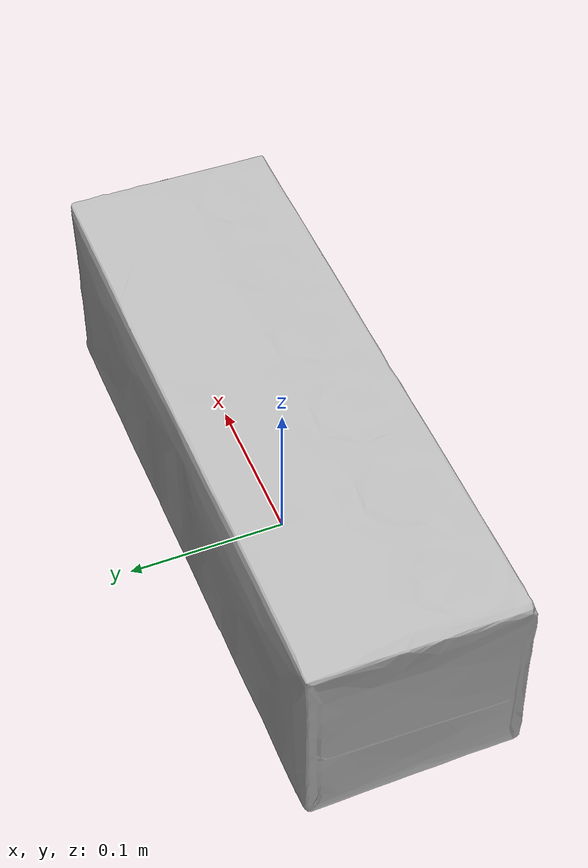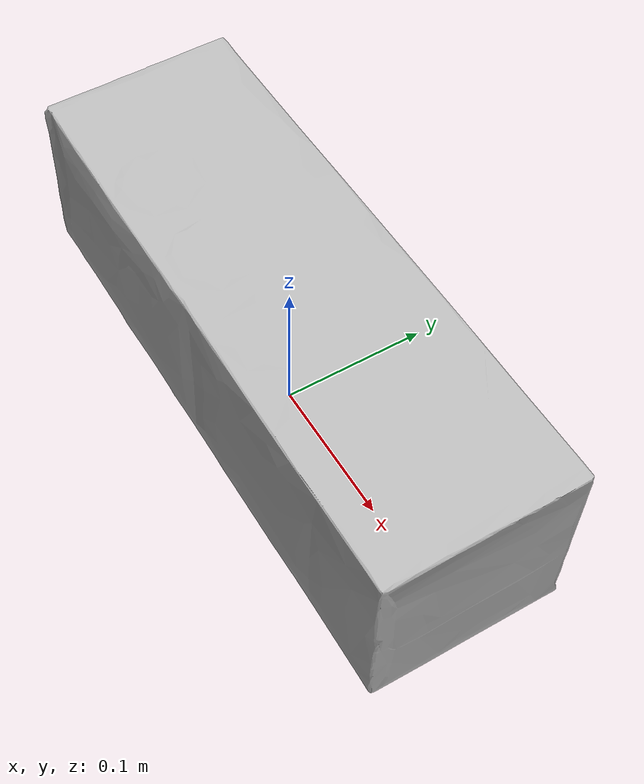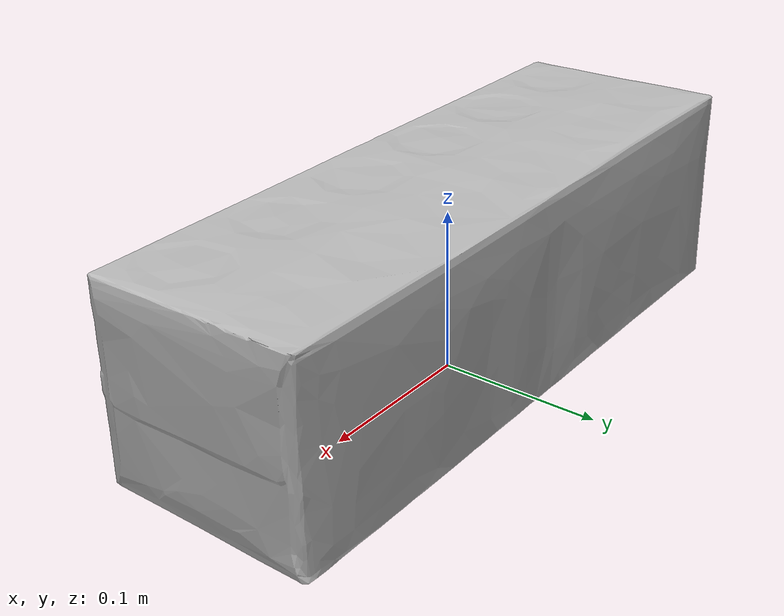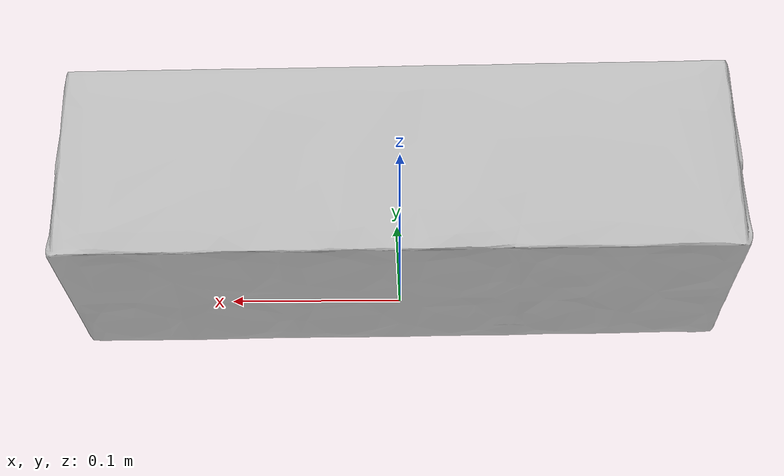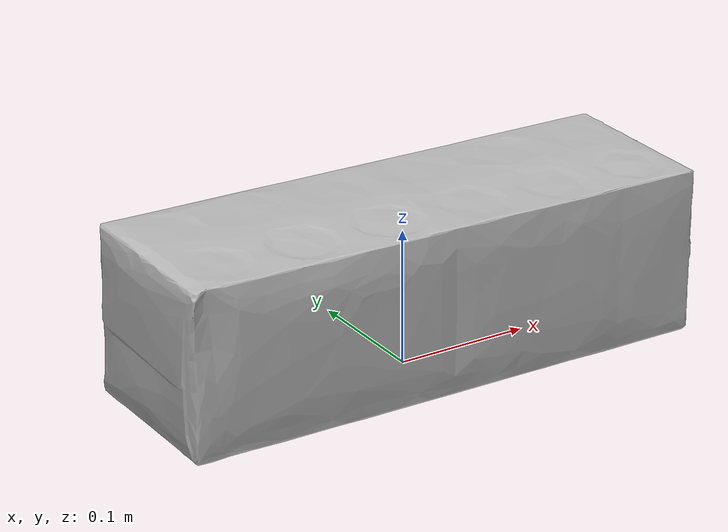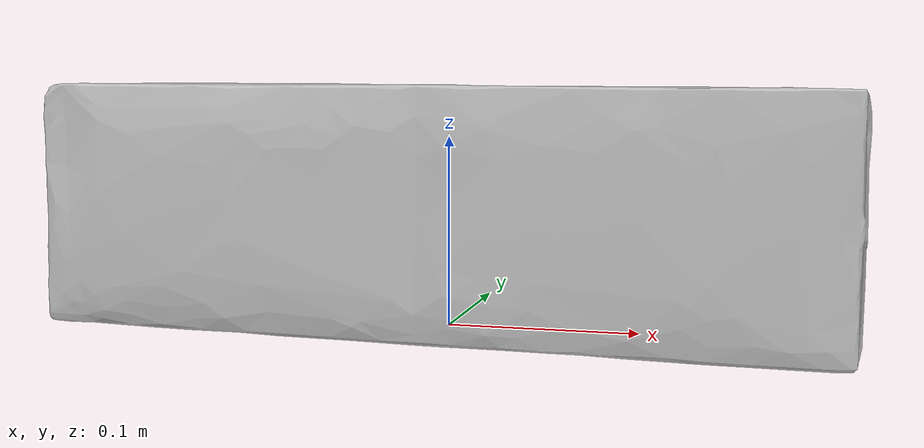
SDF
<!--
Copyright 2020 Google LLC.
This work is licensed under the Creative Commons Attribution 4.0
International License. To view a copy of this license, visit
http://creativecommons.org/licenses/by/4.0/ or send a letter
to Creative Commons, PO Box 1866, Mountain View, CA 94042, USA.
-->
<?xml version="1.0" ?>
<sdf version="1.6">
  <model name="Pepsi_Cola_Caffeine_Free_12_12_fl_oz_355_ml_cans_144_fl_oz_426_lt">
    <link name="link_0">
      <visual name="visual">
        <geometry>
          <mesh>
            <uri>meshes/model.obj</uri>
          </mesh>
        </geometry>
      </visual>
      <collision name="collision_0">
        <geometry>
          <mesh>
            <uri>meshes/model.obj</uri>
          </mesh>
        </geometry>
      </collision>
    </link>
  </model>
</sdf>
